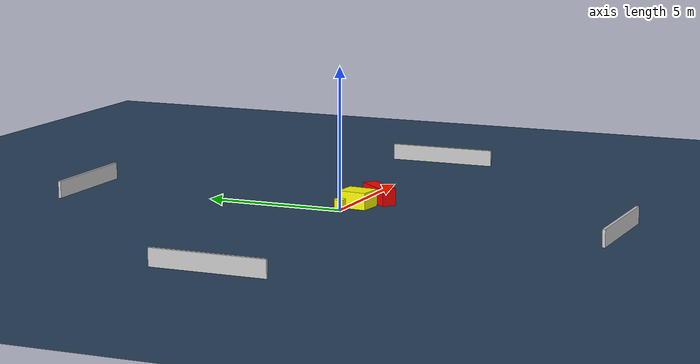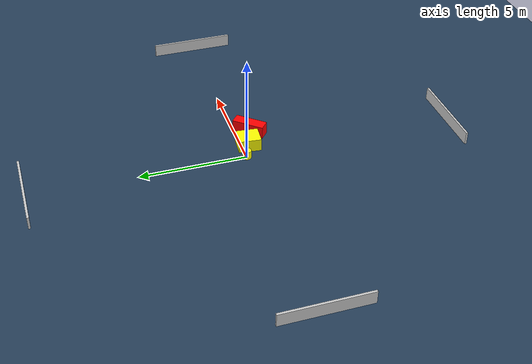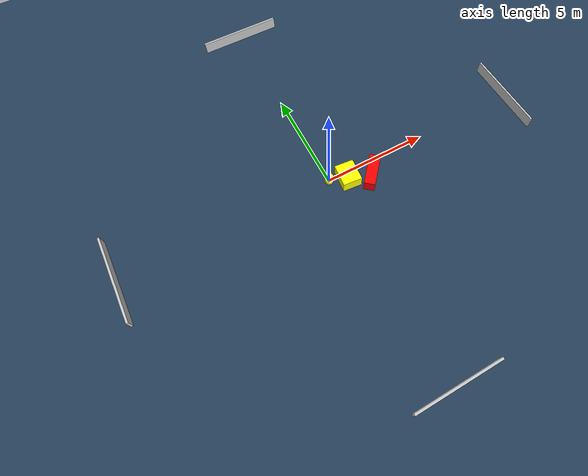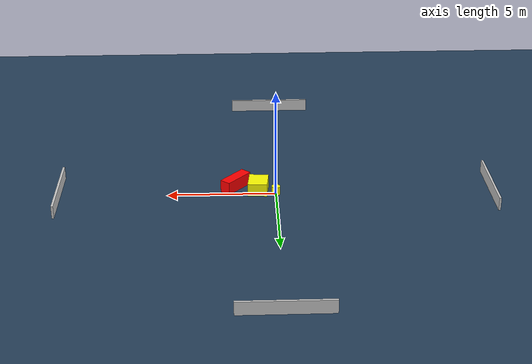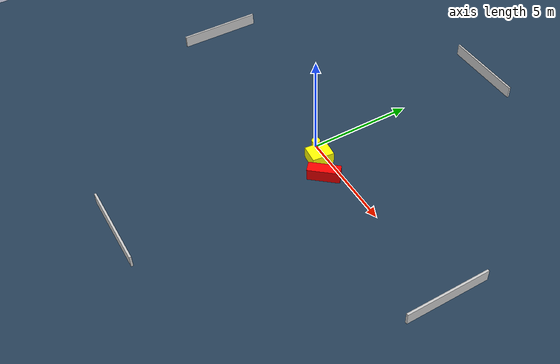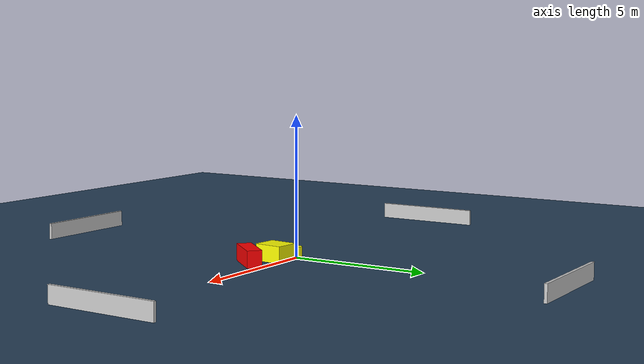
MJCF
<?xml version="1.0" ?>
<mujoco model="generated_environment">
  <option timestep="0.01" integrator="RK4" cone="elliptic"/>
  <default>
    <geom density="1"/>
  </default>
  <asset>
    <texture builtin="gradient" height="3072" name="skybox" rgb1="0.3 0.5 0.7" rgb2="0 0 0" type="skybox" width="512"/>
    <texture builtin="checker" height="300" name="groundplane" rgb1="0.2 0.3 0.4" rgb2="0.1 0.2 0.3" type="2d" width="300"/>
    <material name="groundplane" reflectance="0.2" texrepeat="5 5" texture="groundplane"/>
  </asset>
  <worldbody>
    <light dir="0 0 -1" directional="true" pos="0 0 1.5"/>
    <geom condim="3" friction="0.5 0.005 0.001" material="groundplane" name="floor" pos="0 0 0" size="0 0 0.05" type="plane"/>
    <body name="walls">
      <geom name="wall_1" condim="4" pos="-10.0 0.0 0.3" rgba="0.800000011920929 0.800000011920929 0.800000011920929 1.0" size="0.05 2.0 0.3" type="box"/>
      <geom name="wall_2" condim="4" pos="10.0 0.0 0.3" rgba="0.800000011920929 0.800000011920929 0.800000011920929 1.0" size="0.05 2.0 0.3" type="box"/>
      <geom name="wall_3" condim="4" pos="0.0 -10.0 0.3" rgba="0.800000011920929 0.800000011920929 0.800000011920929 1.0" size="2.0 0.05 0.3" type="box"/>
      <geom name="wall_4" condim="4" pos="0.0 10.0 0.3" rgba="0.800000011920929 0.800000011920929 0.800000011920929 1.0" size="2.0 0.05 0.3" type="box"/>
    </body>
    <body name="robot">
      <joint name="joint_x" type="slide" pos="0 0 0" axis="1 0 0"/>
      <joint name="joint_y" type="slide" pos="0 0 0" axis="0 1 0"/>
      <geom name="robot" type="cylinder" pos="0.0 0.0 0.2" size="0.2 0.2 0.0" mass="5.0" friction="1.0 0.005 0.0001" condim="4" rgba="1.0 1.0 0.0 1.0"/>
    </body>
    <body name="obstacle_1_movable">
      <geom name="obstacle_1_movable" condim="4" pos="0.8180640909180096 -0.31582132093471327 0.3" euler="0 0 174.49234177578168" friction="0.0 0.005 0.001" rgba="1.0 1.0 0.0 1.0" size="0.4484996230438301 0.5253436290402003 0.3" type="box" mass="0.1"/>
      <joint type="free"/>
    </body>
    <body name="obstacle_2_static">
      <geom name="obstacle_2_static" condim="4" pos="1.8623747306052945 -0.7027531236276328 0.3" euler="0 0 229.24781887404816" friction="0.0 0.005 0.001" rgba="1.0 0.0 0.0 1.0" size="0.759841206428735 0.25940383099573316 0.3" type="box"/>
    </body>
  </worldbody>
  <actuator>
    <motor name="actuator_x" joint="joint_x" gear="1" ctrlrange="-1 1"/>
    <motor name="actuator_y" joint="joint_y" gear="1" ctrlrange="-1 1"/>
  </actuator>
</mujoco>
